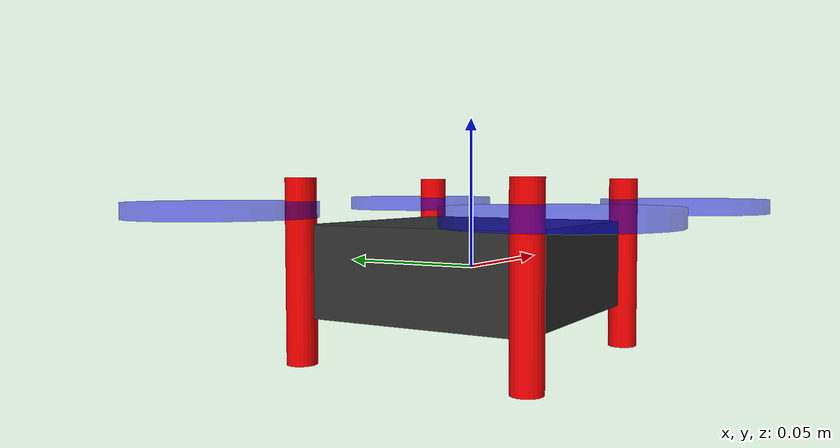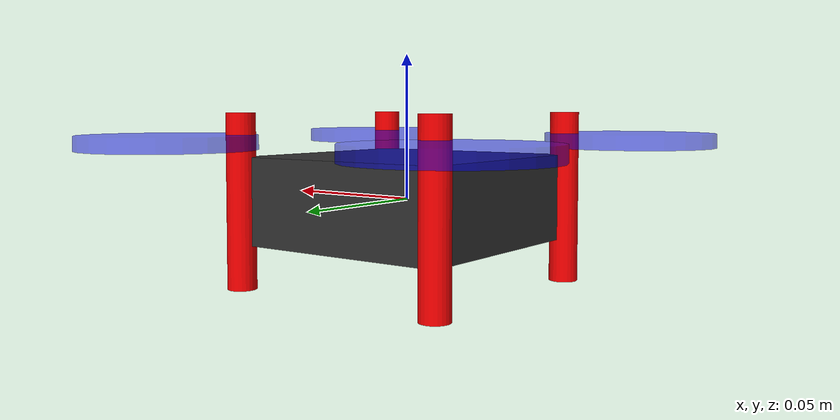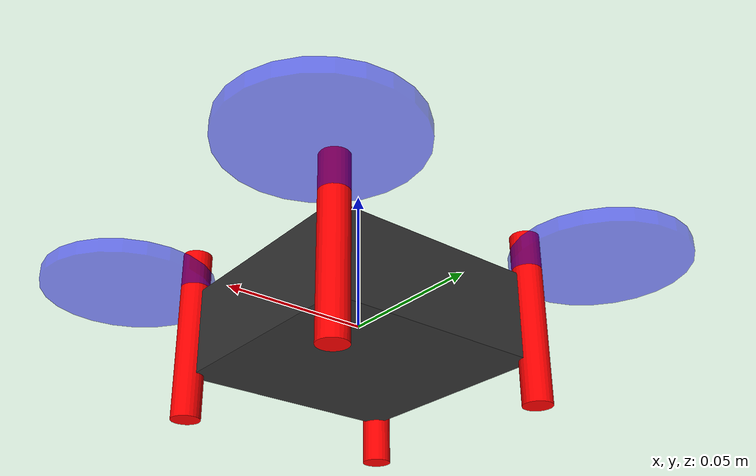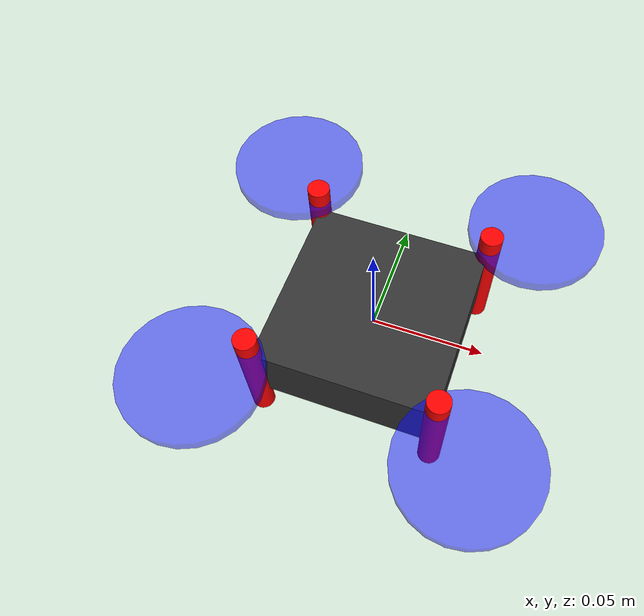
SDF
<?xml version="1.0"?>
<sdf version="1.9">
  <model name="simple_quadrotor">
    <static>false</static>

    <link name="base_link">
      <pose>0 0 0 0 0 0</pose>

      <inertial>
        <mass>1.0</mass>
        <inertia>
          <ixx>0.1</ixx> <ixy>0.0</ixy>
          <ixz>0.0</ixz>
          <iyy>0.1</iyy> <iyz>0.0</iyz>
          <izz>0.1</izz> </inertia>
      </inertial>

      <visual name="body">
        <geometry>
          <box>
            <size>0.08 0.08 0.03</size>
          </box>
        </geometry>
        <material>
          <ambient>0.1 0.1 0.1 1</ambient>
          <diffuse>0.2 0.2 0.2 1</diffuse>
        </material>
      </visual>

      <visual name="arm1">
        <pose>0.04 0.04 0 0 0 0.785</pose>
        <geometry>
          <cylinder>
            <radius>0.005</radius>
            <length>0.06</length>
          </cylinder>
        </geometry>
        <material>
          <ambient>1 0 0 1</ambient>
          <diffuse>1 0 0 1</diffuse>
        </material>
      </visual>

      <visual name="arm2">
        <pose>-0.04 0.04 0 0 0 -0.785</pose>
        <geometry>
          <cylinder>
            <radius>0.005</radius>
            <length>0.06</length>
          </cylinder>
        </geometry>
        <material>
          <ambient>1 0 0 1</ambient>
          <diffuse>1 0 0 1</diffuse>
        </material>
      </visual>

      <visual name="arm3">
        <pose>-0.04 -0.04 0 0 0 0.785</pose>
        <geometry>
          <cylinder>
            <radius>0.005</radius>
            <length>0.06</length>
          </cylinder>
        </geometry>
        <material>
          <ambient>1 0 0 1</ambient>
          <diffuse>1 0 0 1</diffuse>
        </material>
      </visual>

      <visual name="arm4">
        <pose>0.04 -0.04 0 0 0 -0.785</pose>
        <geometry>
          <cylinder>
            <radius>0.005</radius>
            <length>0.06</length>
          </cylinder>
        </geometry>
        <material>
          <ambient>1 0 0 1</ambient>
          <diffuse>1 0 0 1</diffuse>
        </material>
      </visual>

      <collision name="collision">
        <geometry>
          <box>
            <size>0.1 0.1 0.05</size>
          </box>
        </geometry>
      </collision>

    </link>

    <link name="rotor_0">
      <pose>0.057 0.057 0.02 0 0 0</pose>
      <inertial>
        <mass>0.001</mass>
        <inertia>
          <ixx>0.0000001</ixx>
          <ixy>0</ixy>
          <ixz>0</ixz>
          <iyy>0.0000001</iyy>
          <iyz>0</iyz>
          <izz>0.0000001</izz>
        </inertia>
      </inertial>
      <visual name="visual">
        <geometry>
          <cylinder>
            <radius>0.03</radius>
            <length>0.005</length>
          </cylinder>
        </geometry>
        <material>
          <ambient>0 0 1 0.5</ambient>
          <diffuse>0 0 1 0.5</diffuse>
        </material>
      </visual>
    </link>

    <link name="rotor_1">
      <pose>-0.057 0.057 0.02 0 0 0</pose>
      <inertial>
        <mass>0.001</mass>
        <inertia>
          <ixx>0.0000001</ixx>
          <ixy>0</ixy>
          <ixz>0</ixz>
          <iyy>0.0000001</iyy>
          <iyz>0</iyz>
          <izz>0.0000001</izz>
        </inertia>
      </inertial>
      <visual name="visual">
        <geometry>
          <cylinder>
            <radius>0.03</radius>
            <length>0.005</length>
          </cylinder>
        </geometry>
        <material>
          <ambient>0 0 1 0.5</ambient>
          <diffuse>0 0 1 0.5</diffuse>
        </material>
      </visual>
    </link>

    <link name="rotor_2">
      <pose>-0.057 -0.057 0.02 0 0 0</pose>
      <inertial>
        <mass>0.001</mass>
        <inertia>
          <ixx>0.0000001</ixx>
          <ixy>0</ixy>
          <ixz>0</ixz>
          <iyy>0.0000001</iyy>
          <iyz>0</iyz>
          <izz>0.0000001</izz>
        </inertia>
      </inertial>
      <visual name="visual">
        <geometry>
          <cylinder>
            <radius>0.03</radius>
            <length>0.005</length>
          </cylinder>
        </geometry>
        <material>
          <ambient>0 0 1 0.5</ambient>
          <diffuse>0 0 1 0.5</diffuse>
        </material>
      </visual>
    </link>

    <link name="rotor_3">
      <pose>0.057 -0.057 0.02 0 0 0</pose>
      <inertial>
        <mass>0.001</mass>
        <inertia>
          <ixx>0.0000001</ixx>
          <ixy>0</ixy>
          <ixz>0</ixz>
          <iyy>0.0000001</iyy>
          <iyz>0</iyz>
          <izz>0.0000001</izz>
        </inertia>
      </inertial>
      <visual name="visual">
        <geometry>
          <cylinder>
            <radius>0.03</radius>
            <length>0.005</length>
          </cylinder>
        </geometry>
        <material>
          <ambient>0 0 1 0.5</ambient>
          <diffuse>0 0 1 0.5</diffuse>
        </material>
      </visual>
    </link>

    <joint name="rotor_0_joint" type="revolute">
      <parent>base_link</parent>
      <child>rotor_0</child>
      <axis>
        <xyz>0 0 1</xyz>
        <limit>
          <lower>-1e+12</lower>
          <upper>1e+12</upper>
          <effort>10.0</effort>
        </limit>
      </axis>
    </joint>

    <joint name="rotor_1_joint" type="revolute">
      <parent>base_link</parent>
      <child>rotor_1</child>
      <axis>
        <xyz>0 0 1</xyz>
        <limit>
          <lower>-1e+12</lower>
          <upper>1e+12</upper>
          <effort>10.0</effort>
        </limit>
      </axis>
    </joint>

    <joint name="rotor_2_joint" type="revolute">
      <parent>base_link</parent>
      <child>rotor_2</child>
      <axis>
        <xyz>0 0 1</xyz>
        <limit>
          <lower>-1e+12</lower>
          <upper>1e+12</upper>
          <effort>10.0</effort>
        </limit>
      </axis>
    </joint>

    <joint name="rotor_3_joint" type="revolute">
      <parent>base_link</parent>
      <child>rotor_3</child>
      <axis>
        <xyz>0 0 1</xyz>
        <limit>
          <lower>-1e+12</lower>
          <upper>1e+12</upper>
          <effort>10.0</effort>
        </limit>
      </axis>
    </joint>

    <plugin
      filename="gz-sim-multicopter-motor-model-system"
      name="gz::sim::systems::MulticopterMotorModel">
      <jointName>rotor_0_joint</jointName>
      <linkName>rotor_0</linkName>
      <turningDirection>ccw</turningDirection>
      <timeConstantUp>0.0125</timeConstantUp>
      <timeConstantDown>0.025</timeConstantDown>
      <maxRotVelocity>1000</maxRotVelocity>
      <motorConstant>8.54858e-04</motorConstant>
      <momentConstant>0.016</momentConstant>
      <commandSubTopic>command/motor_speed</commandSubTopic>
      <motorNumber>0</motorNumber>
      <rotorDragCoefficient>0.000806428</rotorDragCoefficient>
      <rollingMomentCoefficient>1e-06</rollingMomentCoefficient>
      <motorSpeedPubTopic>motor_speed/0</motorSpeedPubTopic>
      <rotorVelocitySlowdownSim>10</rotorVelocitySlowdownSim>
    </plugin>

    <plugin
      filename="gz-sim-multicopter-motor-model-system"
      name="gz::sim::systems::MulticopterMotorModel">
      <jointName>rotor_1_joint</jointName>
      <linkName>rotor_1</linkName>
      <turningDirection>ccw</turningDirection>
      <timeConstantUp>0.0125</timeConstantUp>
      <timeConstantDown>0.025</timeConstantDown>
      <maxRotVelocity>1000</maxRotVelocity>
      <motorConstant>8.54858e-04</motorConstant>
      <momentConstant>0.016</momentConstant>
      <commandSubTopic>command/motor_speed</commandSubTopic>
      <motorNumber>1</motorNumber>
      <rotorDragCoefficient>0.000806428</rotorDragCoefficient>
      <rollingMomentCoefficient>1e-06</rollingMomentCoefficient>
      <motorSpeedPubTopic>motor_speed/1</motorSpeedPubTopic>
      <rotorVelocitySlowdownSim>10</rotorVelocitySlowdownSim>
    </plugin>

    <plugin
      filename="gz-sim-multicopter-motor-model-system"
      name="gz::sim::systems::MulticopterMotorModel">
      <jointName>rotor_2_joint</jointName>
      <linkName>rotor_2</linkName>
      <turningDirection>cw</turningDirection>
      <timeConstantUp>0.0125</timeConstantUp>
      <timeConstantDown>0.025</timeConstantDown>
      <maxRotVelocity>1000</maxRotVelocity>
      <motorConstant>8.54858e-04</motorConstant>
      <momentConstant>0.016</momentConstant>
      <commandSubTopic>command/motor_speed</commandSubTopic>
      <motorNumber>2</motorNumber>
      <rotorDragCoefficient>0.000806428</rotorDragCoefficient>
      <rollingMomentCoefficient>1e-06</rollingMomentCoefficient>
      <motorSpeedPubTopic>motor_speed/2</motorSpeedPubTopic>
      <rotorVelocitySlowdownSim>10</rotorVelocitySlowdownSim>
    </plugin>

    <plugin
      filename="gz-sim-multicopter-motor-model-system"
      name="gz::sim::systems::MulticopterMotorModel">
      <jointName>rotor_3_joint</jointName>
      <linkName>rotor_3</linkName>
      <turningDirection>cw</turningDirection>
      <timeConstantUp>0.0125</timeConstantUp>
      <timeConstantDown>0.025</timeConstantDown>
      <maxRotVelocity>1000</maxRotVelocity>
      <motorConstant>8.54858e-04</motorConstant>
      <momentConstant>0.016</momentConstant>
      <commandSubTopic>command/motor_speed</commandSubTopic>
      <motorNumber>3</motorNumber>
      <rotorDragCoefficient>0.000806428</rotorDragCoefficient>
      <rollingMomentCoefficient>1e-06</rollingMomentCoefficient>
      <motorSpeedPubTopic>motor_speed/3</motorSpeedPubTopic>
      <rotorVelocitySlowdownSim>10</rotorVelocitySlowdownSim>
    </plugin>

    <plugin
      filename="gz-sim-multicopter-control-system"
      name="gz::sim::systems::MulticopterVelocityControl">
      <robotNamespace>__ROBOT_NAMESPACE__</robotNamespace>
      <commandSubTopic>cmd_vel</commandSubTopic>
      <enableSubTopic>enable</enableSubTopic>
      <comLinkName>base_link</comLinkName>
      <velocityGain>2.5 2.5 2.5</velocityGain>
      <attitudeGain>2.0 2.0 1.5</attitudeGain>
      <angularRateGain>0.2 0.2 0.15</angularRateGain>
      <maximumLinearAcceleration>5 5 5</maximumLinearAcceleration>

      <rotorConfiguration>
        <rotor>
          <jointName>rotor_0_joint</jointName>
          <forceConstant>8.54858e-06</forceConstant>
          <momentConstant>0.016</momentConstant>
          <direction>1</direction>
        </rotor>

        <rotor>
          <jointName>rotor_1_joint</jointName>
          <forceConstant>8.54858e-06</forceConstant>
          <momentConstant>0.016</momentConstant>
          <direction>-1</direction>
        </rotor>

        <rotor>
          <jointName>rotor_2_joint</jointName>
          <forceConstant>8.54858e-06</forceConstant>
          <momentConstant>0.016</momentConstant>
          <direction>1</direction>
        </rotor>

        <rotor>
          <jointName>rotor_3_joint</jointName>
          <forceConstant>8.54858e-06</forceConstant>
          <momentConstant>0.016</momentConstant>
          <direction>-1</direction>
        </rotor>
      </rotorConfiguration>

    </plugin>

    <plugin
      filename="gz-sim-odometry-publisher-system"
      name="gz::sim::systems::OdometryPublisher">
      <odom_frame>odom</odom_frame>
      <robot_base_frame>base_link</robot_base_frame>
      <odom_topic>odom</odom_topic>
      <odom_publish_frequency>50</odom_publish_frequency>
    </plugin>

  </model>
</sdf>
